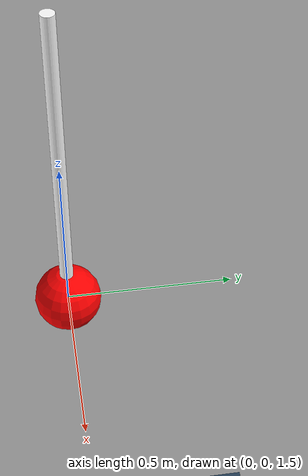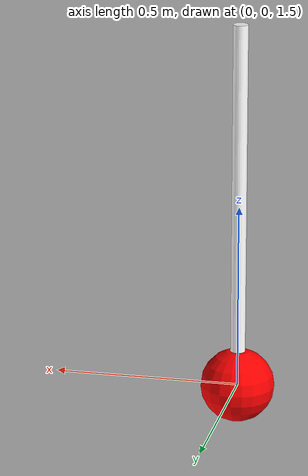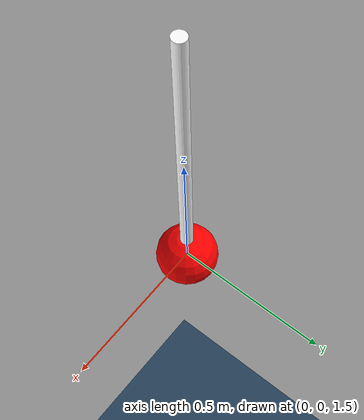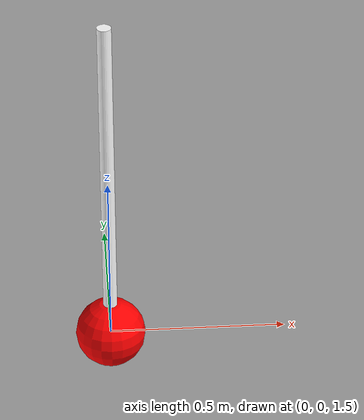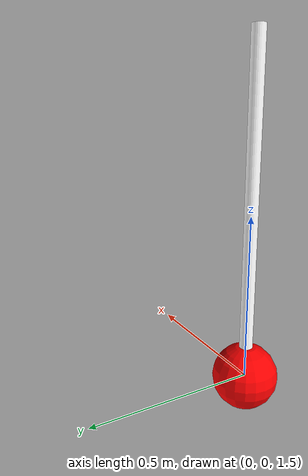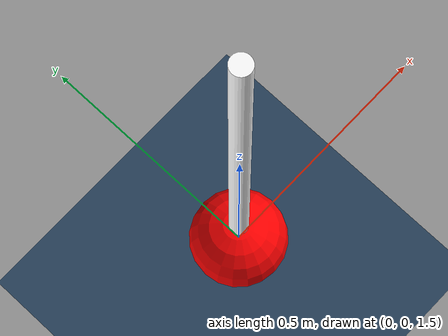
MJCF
<!-- https://mujoco.readthedocs.io/en/latest/overview.html?highlight=hello.xml#examples -->
<mujoco>
  <option timestep="0.01" integrator="RK4" gravity="0 0 -9.81">
    <flag gravity="enable"/>
</option>
<visual>
    <rgba haze="0.5 0.5 0.5 1"/>
    <global offwidth="1920" offheight="1080" elevation="-20" azimuth="120"/>
</visual>
<asset>
  <texture type="skybox" builtin="gradient" rgb1="0.4 0.6 0.8" rgb2="0 0 0" width="32" height="512"/>
  <texture name="grid" type="2d" builtin="checker" rgb1="0.2 0.3 0.4" rgb2="0.1 0.2 0.3" width="512" height="512"/>
  <material name="grid" texture="grid" texrepeat="1 1" texuniform="true" reflectance="0.2"/>
</asset>
   <worldbody>
    <geom name="floor" size="0 0 0.01" type="plane" material="grid" condim="1" solref="1 0.1"/>
    <light name="floorlight" mode="fixed" pos="0 0 50" dir="0 0 -1" diffuse="0.8 0.8 0.8" specular="0.3 0.3 0.3"/>
      <body pos="0 0 2" euler="0 0 0">
         <joint name="joint0" type="hinge" axis = "0 1 0" pos = "0 0 0.5"/>
         <geom type="cylinder" size="0.02 0.5" mass = "0" rgba="1 1 1 1"/>
         <geom type="sphere" pos = "0 0 -0.5" mass = "1" size="0.1" rgba="1 0 0 1"/>
         <camera name="fixed" pos="0 -.6 .3" xyaxes="1 0 0 0 1 2"/>
         <camera name="track" pos="0 -3 1" xyaxes="1 0 0 0 1 2" mode="track"/>
      </body>
   </worldbody>

   <actuator>
     <motor name="torque" joint="joint0"  gear="1" ctrllimited="true" ctrlrange="-100 100"/>
     <position name="position_servo" joint="joint0" kp="0"/>
     <velocity name="velocity_servo" joint="joint0" kv="0"/>
   </actuator>

</mujoco>
